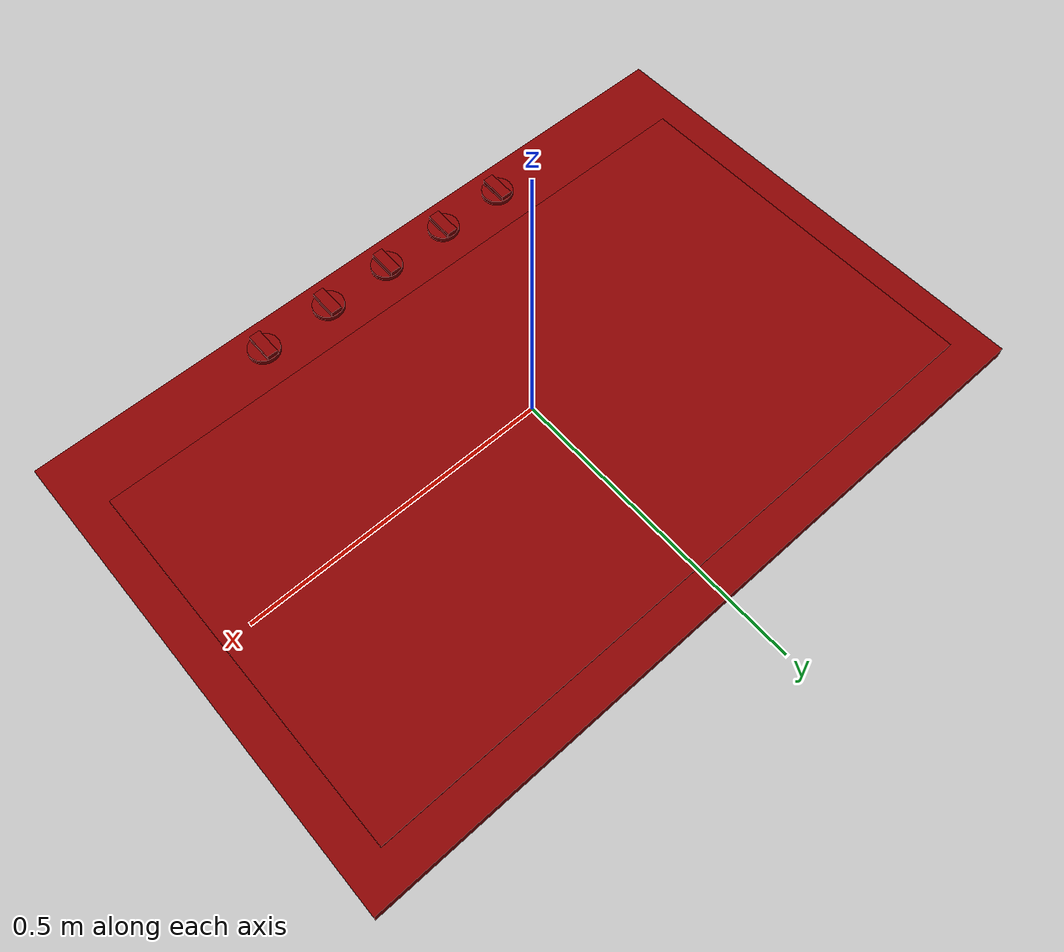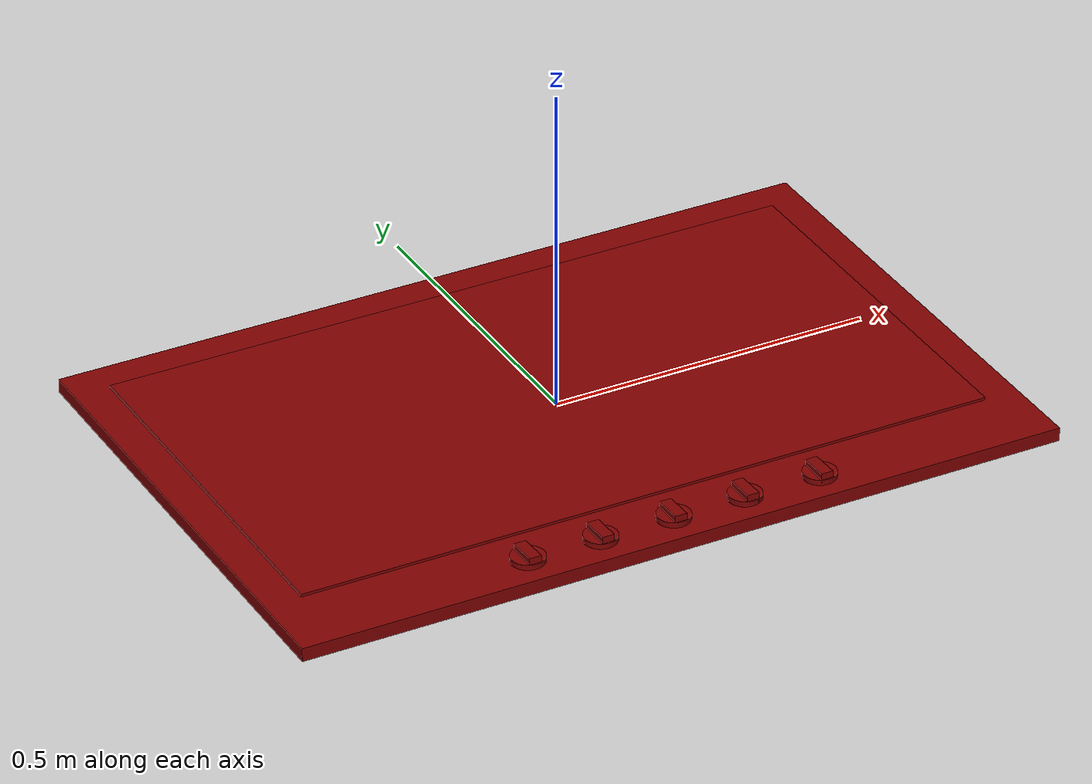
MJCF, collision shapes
<?xml version='1.0' encoding='UTF-8'?>
<mujoco model="model">
  <option timestep="0.002" gravity="0.0 0.0 -9.81"/>
  <compiler angle="radian"/>
  <asset>
    <mesh file="visuals/knob_center.obj" name="knob_center_vis"/>
    <mesh file="visuals/knob_front_left.obj" name="knob_front_left_vis"/>
    <mesh file="visuals/knob_front_right.obj" name="knob_front_right_vis"/>
    <mesh file="visuals/knob_rear_left.obj" name="knob_rear_left_vis"/>
    <mesh file="visuals/knob_rear_right.obj" name="knob_rear_right_vis"/>
    <mesh file="visuals/Body001.obj" name="Body001_vis"/>
    <texture file="visuals/T_BC001.png" name="Body001_material" type="2d"/>
    <material name="Body001_material" rgba="1 1 1 1.0" texture="Body001_material" shininess="0.1" specular="5"/>
    <texture file="visuals/T_BC001.png" name="knob_center_material" type="2d"/>
    <material name="knob_center_material" rgba="1 1 1 1.0" texture="knob_center_material" shininess="0.1" specular="5"/>
    <texture file="visuals/T_BC001.png" name="knob_front_left_material" type="2d"/>
    <material name="knob_front_left_material" rgba="1 1 1 1.0" texture="knob_front_left_material" shininess="0.1" specular="5"/>
    <texture file="visuals/T_BC001.png" name="knob_front_right_material" type="2d"/>
    <material name="knob_front_right_material" rgba="1 1 1 1.0" texture="knob_front_right_material" shininess="0.1" specular="5"/>
    <texture file="visuals/T_BC001.png" name="knob_rear_left_material" type="2d"/>
    <material name="knob_rear_left_material" rgba="1 1 1 1.0" texture="knob_rear_left_material" shininess="0.1" specular="5"/>
    <texture file="visuals/T_BC001.png" name="knob_rear_right_material" type="2d"/>
    <material name="knob_rear_right_material" rgba="1 1 1 1.0" texture="knob_rear_right_material" shininess="0.1" specular="5"/>
  </asset>
  <default>
    <default class="visual">
      <geom conaffinity="0" contype="0" group="1" type="mesh"/>
    </default>
    <default class="collision">
      <geom group="0" rgba="0.5 0 0 0.5"/>
    </default>
    <default class="spawn">
      <geom group="0" rgba="1 1 1 0.5" contype="0" conaffinity="0"/>
      <site group="0" rgba="1 1 1 0.5"/>
    </default>
    <default class="region">
      <geom group="1" conaffinity="0" contype="0" rgba="0 1 0 0"/>
    </default>
  </default>
  <worldbody>
    <body>
      <body name="object">
        <geom mesh="Body001_vis" type="mesh" solimp="0.998 0.998 0.001" solref="0.001 1" friction="0.95 0.3 0.1" class="visual" material="Body001_material"/>
        <geom class="collision" type="box" pos="-0.00029522180557250977 1.8924474716186523e-05 -0.009677570313215256" size="0.5993380546569824 0.39361193776130676 0.01063532568514347" quat="1.0 0.0 0.0 0.0"/>
        <geom class="collision" type="box" pos="-7.250926864799112e-05 0.029300684109330177 -6.970670074224472e-05" size="0.5444291234016418 0.3083740472793579 0.005356773268431425" quat="1.0 0.0 0.0 0.0"/>
        <body name="knob_center">
          <joint axis="0.0 0.0 1.0" pos="0.0015727486461400986 -0.34418222308158875 0.009913011454045773" limited="true" name="knob_center_joint" range="0.0 3.141592653589793" type="hinge" damping="0.2" armature="0.01" frictionloss="1"/>
          <geom mesh="knob_center_vis" type="mesh" solimp="0.998 0.998 0.001" solref="0.001 1" friction="0.95 0.3 0.1" class="visual" material="knob_center_material"/>
          <geom class="collision" type="cylinder" pos="0.0007215924561023712 -0.3444579541683197 0.005814229138195515" size="0.025363123044371605 0.0042502121068537235" quat="1.0 0.0 0.0 0.0" friction="100 0.5 0.01"/>
          <geom class="collision" type="box" pos="0.00024800002574920654 -0.3441460430622101 0.011451083235442638" size="0.009305347688496113 0.023183301091194153 0.007698982022702694" quat="0.9997909665107727 -0.020444730296730995 0.0 0.0" name="knob_center_main" friction="100 0.5 0.01"/>
        </body>
        <body name="knob_front_left">
          <joint axis="0.0 0.0 1.0" pos="-0.2281254231929779 -0.34418222308158875 0.009913011454045773" limited="true" name="knob_front_left_joint" range="0.0 3.141592653589793" type="hinge" damping="0.2" armature="0.01" frictionloss="1"/>
          <geom mesh="knob_front_left_vis" type="mesh" solimp="0.998 0.998 0.001" solref="0.001 1" friction="0.95 0.3 0.1" class="visual" material="knob_front_left_material"/>
          <geom class="collision" type="cylinder" pos="-0.22827336192131042 -0.34419381618499756 0.0058477697893977165" size="0.02581617794930935 0.004138886462897062" quat="1.0 0.0 0.0 0.0" friction="100 0.5 0.01"/>
          <geom class="collision" type="box" pos="-0.22847935557365417 -0.3441460430622101 0.011451083235442638" size="0.009305347688496113 0.023183301091194153 0.007698982022702694" quat="0.9997909665107727 -0.020444730296730995 0.0 0.0" name="knob_front_left_main" friction="100 0.5 0.01"/>
        </body>
        <body name="knob_front_right">
          <joint axis="0.0 0.0 1.0" pos="0.2340814471244812 -0.34418222308158875 0.009913011454045773" limited="true" name="knob_front_right_joint" range="0.0 3.141592653589793" type="hinge" damping="0.2" armature="0.01" frictionloss="1"/>
          <geom mesh="knob_front_right_vis" type="mesh" solimp="0.998 0.998 0.001" solref="0.001 1" friction="0.95 0.3 0.1" class="visual" material="knob_front_right_material"/>
          <geom class="collision" type="cylinder" pos="0.2347954511642456 -0.34429094195365906 0.005814229138195515" size="0.025363123044371605 0.0042502121068537235" quat="1.0 0.0 0.0 0.0" friction="100 0.5 0.01"/>
          <geom class="collision" type="box" pos="0.23388102650642395 -0.3441460430622101 0.011451083235442638" size="0.009305347688496113 0.023183301091194153 0.007698982022702694" quat="0.9997909665107727 -0.020444730296730995 0.0 0.0" name="knob_front_right_main" friction="100 0.5 0.01"/>
        </body>
        <body name="knob_rear_left">
          <joint axis="0.0 0.0 1.0" pos="-0.11417058855295181 -0.34418222308158875 0.009913011454045773" limited="true" name="knob_rear_left_joint" range="0.0 3.141592653589793" type="hinge" damping="0.2" armature="0.01" frictionloss="1"/>
          <geom mesh="knob_rear_left_vis" type="mesh" solimp="0.998 0.998 0.001" solref="0.001 1" friction="0.95 0.3 0.1" class="visual" material="knob_rear_left_material"/>
          <geom class="collision" type="cylinder" pos="-0.11459353566169739 -0.34462302923202515 0.005814229138195515" size="0.025363123044371605 0.0042502121068537235" quat="1.0 0.0 0.0 0.0" friction="100 0.5 0.01"/>
          <geom class="collision" type="box" pos="-0.1144222840666771 -0.3441460430622101 0.011451083235442638" size="0.009305347688496113 0.023183301091194153 0.007698982022702694" quat="0.9997909665107727 -0.020444730296730995 0.0 0.0" name="knob_rear_left_main" friction="100 0.5 0.01"/>
        </body>
        <body name="knob_rear_right">
          <joint axis="0.0 0.0 1.0" pos="0.11450554430484772 -0.34418222308158875 0.009913011454045773" limited="true" name="knob_rear_right_joint" range="0.0 3.141592653589793" type="hinge" damping="0.2" armature="0.01" frictionloss="1"/>
          <geom mesh="knob_rear_right_vis" type="mesh" solimp="0.998 0.998 0.001" solref="0.001 1" friction="0.95 0.3 0.1" class="visual" material="knob_rear_right_material"/>
          <geom class="collision" type="cylinder" pos="0.11459513008594513 -0.34395888447761536 0.005814229138195515" size="0.025363123044371605 0.0042502121068537235" quat="1.0 0.0 0.0 0.0" friction="100 0.5 0.01"/>
          <geom class="collision" type="box" pos="0.1149182841181755 -0.3441460430622101 0.011451083235442638" size="0.009305347688496113 0.023183301091194153 0.007698982022702694" quat="0.9997909665107727 -0.020444730296730995 0.0 0.0" name="knob_rear_right_main" friction="100 0.5 0.01"/>
        </body>
        <site type="cylinder" rgba="0.3 0.4 1 0.5" size="0.10174809396266937 0.006138943135738373" pos="4.069006536155939e-05 0.030525188893079758 -0.0055334921926259995" name="burner_on_center"/>
        <site type="cylinder" rgba="0.3 0.4 1 0.5" size="0.042219217866659164 0.0061389426700770855" pos="-0.35221078991889954 -0.11905696243047714 -0.0055334921926259995" name="burner_on_front_left"/>
        <site type="cylinder" rgba="0.3 0.4 1 0.5" size="0.05456821620464325 0.006138941738754511" pos="0.35252463817596436 -0.12075084447860718 -0.005533489864319563" name="burner_on_front_right"/>
        <site type="cylinder" rgba="0.3 0.4 1 0.5" size="0.05681011453270912 0.006138941273093224" pos="-0.35137036442756653 0.18157240748405457 -0.005533493123948574" name="burner_on_rear_left"/>
        <site type="cylinder" rgba="0.3 0.4 1 0.5" size="0.056028492748737335 0.006138943135738373" pos="0.3526456952095032 0.18153207004070282 -0.005533491261303425" name="burner_on_rear_right"/>
        <site type="cylinder" rgba="0.5 0 0 0" size="0.10174809396266937 4.999999873689376e-05" pos="4.069006536155939e-05 0.030525188893079758 0.005251838825643063" name="burner_center_place_site"/>
        <site type="cylinder" rgba="0.5 0 0 0" size="0.042219217866659164 4.999999873689376e-05" pos="-0.35221078991889954 -0.11905696243047714 0.005251838825643063" name="burner_front_left_place_site"/>
        <site type="cylinder" rgba="0.5 0 0 0" size="0.05456821620464325 4.999999873689376e-05" pos="0.35252463817596436 -0.12075084447860718 0.005251838825643063" name="burner_front_right_place_site"/>
        <site type="cylinder" rgba="0.5 0 0 0" size="0.05681011453270912 4.999999873689376e-05" pos="-0.35137036442756653 0.18157240748405457 0.005251838825643063" name="burner_rear_left_place_site"/>
        <site type="cylinder" rgba="0.5 0 0 0" size="0.056028492748737335 4.999999873689376e-05" pos="0.3526456952095032 0.18153207004070282 0.005251838825643063" name="burner_rear_right_place_site"/>
        <geom class="region" name="reg_main" type="box" pos="0.0 0.0 -0.009289504960179329" size="0.5996396074295044 0.39434142208099365 0.011304404422640801"/>
      </body>
    </body>
  </worldbody>
  <actuator>
    <motor name="knob_center_joint_actuator" joint="knob_center_joint" gear="10"/>
    <motor name="knob_front_left_joint_actuator" joint="knob_front_left_joint" gear="10"/>
    <motor name="knob_front_right_joint_actuator" joint="knob_front_right_joint" gear="10"/>
    <motor name="knob_rear_left_joint_actuator" joint="knob_rear_left_joint" gear="10"/>
    <motor name="knob_rear_right_joint_actuator" joint="knob_rear_right_joint" gear="10"/>
  </actuator>
</mujoco>
